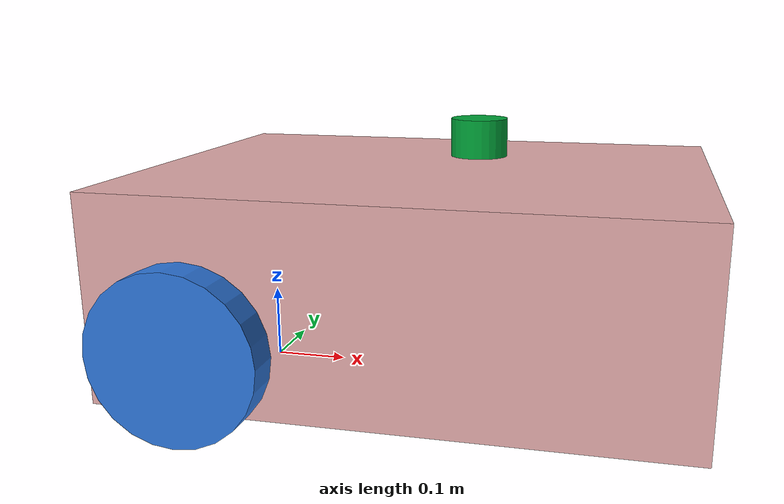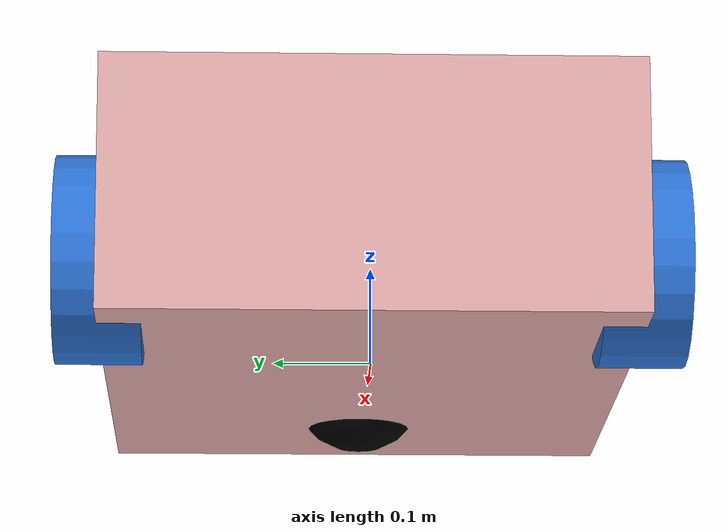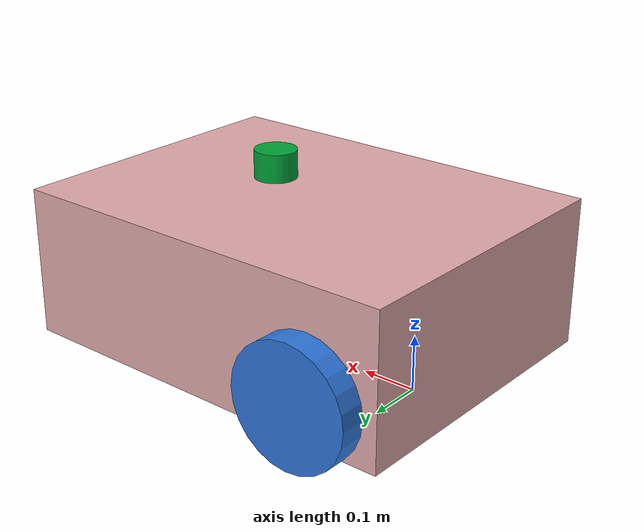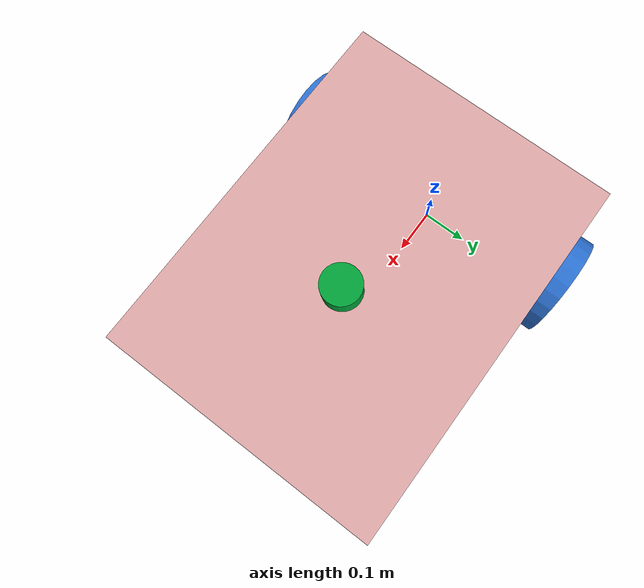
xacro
<?xml version="1.0"?>
<robot name="robomow_612p" xmlns:xacro="http://ros.org/wiki/xacro">
  <xacro:arg name="sim" default="false" />
  <xacro:include filename="$(find linorobot2_description)/urdf/robomow_612p_properties.urdf.xacro" />
  <xacro:include filename="$(find linorobot2_description)/urdf/mech/base.urdf.xacro" />
  <xacro:include filename="$(find linorobot2_description)/urdf/mech/wheel.urdf.xacro" />
  <xacro:include filename="$(find linorobot2_description)/urdf/mech/caster_wheel.urdf.xacro" />
  <xacro:include filename="$(find linorobot2_description)/urdf/sensors/plugins.urdf.xacro" />
  <xacro:include filename="$(find linorobot2_description)/urdf/sensors/imu.urdf.xacro" />
  <xacro:include filename="$(find linorobot2_description)/urdf/sensors/generic_laser.urdf.xacro" />
  <xacro:include filename="$(find linorobot2_description)/urdf/sensors/depth_sensor.urdf.xacro" />
  <xacro:include filename="$(find linorobot2_description)/urdf/controllers/diff_drive.urdf.xacro" />

  <xacro:base
    length="${base_length}"
    width="${base_width}"
    height="${base_height}"
    mass="${base_mass}"
    wheel_radius="${wheel_radius}"
    wheel_pos_z="${wheel_pos_z}"
    mesh_file="${base_mesh_file}"
  />

  <xacro:wheel
    side="left"
    radius="${wheel_radius}"
    width="${wheel_width}"
    pos_x="${wheel_pos_x}"
    pos_y="${wheel_pos_y}"
    pos_z="${wheel_pos_z}"
    mass="${wheel_mass}"
    mesh_file="${wheel_mesh_file}"
  />

  <xacro:wheel
    side="right"
    radius="${wheel_radius}"
    width="${wheel_width}"
    pos_x="${wheel_pos_x}"
    pos_y="${-wheel_pos_y}"
    pos_z="${wheel_pos_z}"
    mass="${wheel_mass}"
    mesh_file="${wheel_mesh_file}"
  />

  <xacro:if value="${front_caster_wheel}">
    <xacro:caster_wheel
      side="front"
      mass="0.1"
      base_length="${caster_pos_x}"
      wheel_radius="${wheel_radius}"
      wheel_pos_z="${wheel_pos_z}"
    />
  </xacro:if>

  <xacro:imu/>

  <xacro:generic_laser>
    <xacro:insert_block name="laser_pose" />
  </xacro:generic_laser>

  <xacro:depth_sensor>
    <xacro:insert_block name="depth_sensor_pose" />
  </xacro:depth_sensor>

  <xacro:diff_drive_controller
    wheel_separation="${wheel_pos_y * 2}"
    wheel_radius="${wheel_radius}"
  />
</robot>

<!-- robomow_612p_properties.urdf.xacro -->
<robot xmlns:xacro="http://ros.org/wiki/xacro">
  <!-- Robomow 612P Dimensions (converted from inches to meters) -->
  <!-- 1 inch = 0.0254 meters -->

  <!-- Horizontal distance between centers of wheels: 22 inch = 0.5588 m -->
  <xacro:property name="base_width" value="0.5588" />

  <!-- Driving wheel diameter: 8.5 inch -> radius: 4.25 inch = 0.10795 m -->
  <xacro:property name="wheel_radius" value="0.10795" />
  <xacro:property name="wheel_width" value="0.090" />

  <!-- Caster wheel position: 19 inch from driving axle = 0.4826 m -->
  <xacro:property name="wheel_pos_x" value="0.0" />
  <xacro:property name="wheel_pos_y" value="0.2794" /> <!-- base_width / 2 -->
  <xacro:property name="wheel_pos_z" value="-0.0508" />

  <!-- Caster wheel diameter: 3.5 inch -> radius: 1.75 inch = 0.04445 m -->
  <xacro:property name="caster_radius" value="0.04445" />
  <xacro:property name="caster_pos_x" value="0.5334" />
  <xacro:property name="caster_pos_y" value="0.0" />
  <xacro:property name="caster_pos_z" value="0.0" />

  <!-- Base dimensions -->
  <xacro:property name="base_length" value="0.737" />
  <xacro:property name="base_height" value="0.2667" />
  <xacro:property name="base_mass" value="20.0" />
  <xacro:property name="base_mesh_file" value="" />

  <xacro:property name="wheel_mass" value="1.0" />
  <xacro:property name="wheel_torque" value="20" />

  <xacro:property name="front_caster_wheel" value="true" />
  <xacro:property name="rear_caster_wheel" value="false" />

  <xacro:property name="wheel_mesh_file" value="" />

  <xacro:property name="laser_pose">
    <origin xyz="0.3 0 0.2" rpy="0 0 0"/>
  </xacro:property>

  <xacro:property name="depth_sensor_pose">
    <origin xyz="0.3 0 0.1" rpy="0 0 0"/>
  </xacro:property>
</robot>

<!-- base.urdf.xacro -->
<robot xmlns:xacro="http://ros.org/wiki/xacro">
  <xacro:macro name="base" params="length width height mass wheel_radius wheel_pos_z mesh_file">
    <link name="base_footprint"/>

    <link name="base_link">
      <visual>
        <origin xyz="${(length/2) - 0.1327} 0 0" rpy="0 0 0"/>
        <geometry>
          <xacro:if value="${mesh_file == ''}">
            <box size="${length} ${width} ${height}"/>
          </xacro:if>
          <xacro:unless value="${mesh_file == ''}">
            <mesh filename="${mesh_file}" scale="1 1 1"/>
          </xacro:unless>
        </geometry>
        <material name="yellow">
          <color rgba="0.8784 0.6627 0.6627 1.0"/>
        </material>
      </visual>

      <collision>
        <origin xyz="${(length/2) - 0.0127} 0 0" rpy="0 0 0"/>
        <geometry>
          <box size="${length} ${width} ${height}"/>
        </geometry>
      </collision>

      <inertial>
        <origin xyz="0 0 0" rpy="0 0 0"/>
        <mass value="${mass}"/>
        <inertia ixx="${(1/12) * mass * ((width  * width)  + (height * height))}" ixy="0.0" ixz="0.0"
                 iyy="${(1/12) * mass * ((length * length) + (height * height))}" iyz="0.0"
                 izz="${(1/12) * mass * ((length * length) + (width  * width))}"/>
      </inertial>
    </link>

    <gazebo reference="base_link">
      <visual>
        <material>
          <ambient>0.8392 0.6314 0.0 1.0</ambient>
          <diffuse>0.8392 0.6314 0.0 1.0</diffuse>
          <specular>0.99 0.99 0.99 1.0</specular>
          <emissive>0.0 0.0 0.0 0.0</emissive>
        </material>
      </visual>
    </gazebo>

    <joint name="base_to_footprint" type="fixed">
      <parent link="base_footprint"/>
      <child link="base_link"/>
      <origin xyz="0 0 ${wheel_radius - wheel_pos_z}" rpy="0 0 0"/>
    </joint>
  </xacro:macro>
</robot>

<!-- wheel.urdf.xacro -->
<robot xmlns:xacro="http://ros.org/wiki/xacro">
  <xacro:macro name="wheel" params="side radius width pos_x pos_y pos_z mass mesh_file">
    <link name="${side}_wheel_link">
      <visual>
        <origin xyz="0 0 0" rpy="${pi/2} 0 0"/>
        <geometry>
          <xacro:if value="${mesh_file == ''}">
            <cylinder radius="${radius}" length="${width}"/>
          </xacro:if>
          <xacro:unless value="${mesh_file == ''}">
            <mesh filename="${mesh_file}" scale="1 1 1"/>
          </xacro:unless>
        </geometry>
        <material name="blue">
            <color rgba="0.1764 0.4588 0.8509 1.0"/>
        </material>
      </visual>
      <collision>
        <origin xyz="0 0 0" rpy="${pi/2} 0 0"/>
        <geometry>
          <cylinder radius="${radius}" length="${width}"/>
        </geometry>
      </collision>

      <inertial>
        <origin xyz="0 0 0" rpy="0 0 0"/>
        <mass value="${mass}"/>
        <inertia ixx="${(2/5) * mass * (radius * radius)}" ixy="0" ixz="0"
                 iyy="${(2/5) * mass * (radius * radius)}" iyz="0"
                 izz="${(2/5) * mass * (radius * radius)}" />
      </inertial>
    </link>
    <gazebo reference="${side}_wheel_link">
      <visual>
        <material>
          <ambient>0.1764 0.4588 0.8509 1.0</ambient>
          <diffuse>0.1764 0.4588 0.8509 1.0</diffuse>
          <specular>0.1764 0.4588 0.8509 1.0</specular>
          <emissive>0.0 0.0 0.0 0.0</emissive>
        </material>
      </visual>
    </gazebo>
    <joint name="${side}_wheel_joint" type="continuous">
      <axis xyz="0 1 0" />
      <parent link="base_link"/>
      <child link="${side}_wheel_link"/>
      <origin xyz="${pos_x} ${pos_y} ${pos_z}" rpy="0 0 0"/>
    </joint>
  </xacro:macro>
</robot>

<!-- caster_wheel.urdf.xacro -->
<robot xmlns:xacro="http://ros.org/wiki/xacro">
  <xacro:macro name="caster_wheel" params="side mass base_length wheel_radius wheel_pos_z">
    <xacro:property name="caster_wheel_radius" value="${(wheel_radius - wheel_pos_z) / 2}" />
    <xacro:if value="${side == 'front'}">
        <xacro:property name="caster_wheel_x" value="${base_length - caster_wheel_radius}" />
    </xacro:if>

    <xacro:if value="${side == 'rear'}">
        <xacro:property name="caster_wheel_x" value="${-base_length + caster_wheel_radius}" />
    </xacro:if>

    <link name="${side}_caster_wheel_link">
      <visual>
        <origin xyz="0 0 0" rpy="0 0 0"/>
        <geometry>
          <sphere radius="${caster_wheel_radius}" />
        </geometry>
        <material name="black">
            <color rgba="0.0 0.0 0.0 1.0"/>
        </material>
      </visual>

      <collision>
        <origin xyz="0 0 0" rpy="0 0 0"/>
        <geometry>
          <sphere radius="${caster_wheel_radius}" />
        </geometry>
      </collision>

      <inertial>
        <origin xyz="0 0 0" rpy="0 0 0"/>
        <mass value="${mass}"/>
        <inertia ixx="${(2/5) * mass * (caster_wheel_radius * caster_wheel_radius)}" ixy="0" ixz="0"
                 iyy="${(2/5) * mass * (caster_wheel_radius * caster_wheel_radius)}" iyz="0"
                 izz="${(2/5) * mass * (caster_wheel_radius * caster_wheel_radius)}" />
      </inertial>
    </link>

    <gazebo reference="${side}_caster_wheel_link">
        <mu1>0.01</mu1>
        <mu2>0.01</mu2>
    </gazebo>

    <joint name="${side}_caster_wheel_joint" type="fixed">
      <parent link="base_link"/>
      <child link="${side}_caster_wheel_link"/>
      <origin xyz="${caster_wheel_x} 0 -${caster_wheel_radius}" rpy="0 0 0"/>
    </joint>
  </xacro:macro>
</robot>

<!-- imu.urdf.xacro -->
<robot xmlns:xacro="http://ros.org/wiki/xacro">
  <xacro:macro name="imu">
    <link name="imu_link"/>

    <joint name="imu_to_base_link" type="fixed">
      <parent link="base_link"/>
      <child link="imu_link"/>
      <origin xyz="0 0 0" rpy="0 0 0"/>
    </joint>

    <gazebo>
      <plugin filename="gz-sim-imu-system" name="gz::sim::systems::Imu">
      </plugin>
    </gazebo>

    <gazebo reference="imu_link">
      <sensor name="imu_sensor" type="imu">
        <topic>$(arg namespace)/imu/data</topic>
        <update_rate>50</update_rate>
        <always_on>true</always_on>
        <visualize>true</visualize>
      </sensor>
    </gazebo>
  </xacro:macro>
</robot>

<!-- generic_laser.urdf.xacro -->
<robot xmlns:xacro="http://ros.org/wiki/xacro">
  <xacro:include filename="$(find linorobot2_description)/urdf/sensors/laser.urdf.xacro" />

  <xacro:macro name="generic_laser" params="*origin">
    <xacro:laser
      update_rate="10"
      ray_count="360"
      min_angle="-3.1416"
      max_angle="3.1416"
      min_range="0.08"
      max_range="12.0"
      frame_id="laser"
      topic_name="/scan"
    >
      <xacro:insert_block name="origin" />
    </xacro:laser>
  </xacro:macro>

  <xacro:macro name="generic_base_laser" params="*origin">
    <xacro:laser
      update_rate="10"
      ray_count="360"
      min_angle="-3.1416"
      max_angle="3.1416"
      min_range="0.21"
      max_range="5.5"
      frame_id="base_laser"
      topic_name="base/scan"
    >
      <xacro:insert_block name="origin" />
    </xacro:laser>
  </xacro:macro>
</robot>

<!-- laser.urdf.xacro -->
<robot xmlns:xacro="http://ros.org/wiki/xacro">
  <xacro:property name="M_PI" value="3.1415926535897931" />
  <xacro:macro name="laser" params="*origin update_rate ray_count min_angle max_angle min_range max_range frame_id topic_name">
    <link name="${frame_id}">
      <visual>
        <origin xyz="0 0 -0.025" rpy="0 0 0"/>
        <geometry>
          <cylinder radius="0.0375" length="0.05"/>
        </geometry>
        <material name="green">
            <color rgba="0.003 0.639 0.223 1.0"/>
        </material>
      </visual>
      <collision>
        <origin xyz="0 0 -0.025" rpy="0 0 0"/>
        <geometry>
          <cylinder radius="0.0375" length="0.05"/>
        </geometry>
      </collision>

      <inertial>
        <origin xyz="0 0 0" rpy="0 0 0"/>
        <mass value="0.1"/>
        <inertia ixx="${(2/5) * 0.1 * (0.0375 * 0.0375)}" ixy="0" ixz="0"
                 iyy="${(2/5) * 0.1 * (0.0375 * 0.0375)}" iyz="0"
                 izz="${(2/5) * 0.1 * (0.0375 * 0.0375)}" />
      </inertial>
    </link>

    <gazebo reference="${frame_id}">
      <visual>
        <material>
          <ambient>0.003 0.639 0.223 1.0</ambient>
          <diffuse>0.003 0.639 0.223 1.0</diffuse>
          <specular>0.003 0.639 0.223 1.0</specular>
          <emissive>0.0 0.0 0.0 0.0</emissive>
        </material>
      </visual>
    </gazebo>

    <joint name="${frame_id}_to_base_link" type="fixed">
      <parent link="base_link"/>
      <child link="${frame_id}"/>
      <xacro:insert_block name="origin" />
    </joint>

    <gazebo reference="${frame_id}">
      <sensor name="gpu_lidar" type="gpu_lidar">
        <topic>$(arg namespace)${topic_name}</topic>
        <gz_frame_id>${frame_id}</gz_frame_id>
        <update_rate>${update_rate}</update_rate>
        <always_on>true</always_on>
        <visualize>true</visualize>
        <lidar>
          <scan>
            <horizontal>
              <samples>${ray_count}</samples>
              <resolution>1</resolution>
              <min_angle>${min_angle}</min_angle>
              <max_angle>${max_angle}</max_angle>
            </horizontal>
            <vertical>
              <samples>1</samples>
              <resolution>1</resolution>
              <min_angle>0.0</min_angle>
              <max_angle>0.0</max_angle>
            </vertical>
          </scan>
          <range>
            <min>${min_range}</min>
            <max>${max_range}</max>
            <resolution>0.01</resolution>
          </range>
        </lidar>
      </sensor>
    </gazebo>
  </xacro:macro>
</robot>

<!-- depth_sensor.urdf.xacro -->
<robot xmlns:xacro="http://ros.org/wiki/xacro">
  <xacro:property name="M_PI" value="3.1415926535897931" />
  <xacro:macro name="depth_sensor" params="*origin">
    <link name="camera_link">
      <visual>
        <origin xyz="0 0 0" rpy="0 0 0"/>
        <geometry>
          <box size="0.030 0.124 0.030"/>
        </geometry>
        <material name="red">
          <color rgba="0.416 0.051 0.047 1.0"/>
        </material>
      </visual>

      <collision>
        <origin xyz="0 0 0" rpy="0 0 0"/>
        <geometry>
          <box size="0.030 0.124 0.030"/>
        </geometry>
      </collision>

      <inertial>
        <origin xyz="0 0 0" rpy="0 0 0"/>
        <mass value="0.135"/>
        <inertia ixx="${(1/12) * 0.135 * ((0.124  * 0.124)  + (0.030 * 0.030))}" ixy="0.0" ixz="0.0"
                 iyy="${(1/12) * 0.135 * ((0.030 * 0.030) + (0.030 * 0.030))}" iyz="0.0"
                 izz="${(1/12) * 0.135 * ((0.030 * 0.030) + (0.124  * 0.124))}"/>
      </inertial>
    </link>

    <gazebo reference="camera_link">
      <visual>
        <material>
          <ambient>0.416 0.051 0.047 1.0</ambient>
          <diffuse>0.416 0.051 0.047 1.0</diffuse>
          <specular>0.416 0.051 0.047 1.0</specular>
          <emissive>0.416 0.051 0.047 1.0</emissive>
        </material>
      </visual>
    </gazebo>rgb(213,28,40)

    <joint name="camera_to_base_link" type="fixed">
      <parent link="base_link"/>
      <child link="camera_link"/>
      <xacro:insert_block name="origin" />
    </joint>

    <link name="camera_depth_link"/>
    <joint name="camera_depth_joint" type="fixed">
      <origin xyz="0 0 0" rpy="0 0 0"/>
      <parent link="camera_link"/>
      <child link="camera_depth_link"/>
    </joint>

    <gazebo reference="camera_link">
      <sensor name="camera" type="rgbd_camera">
        <topic>$(arg namespace)/camera</topic>
        <update_rate>30.0</update_rate>
        <always_on>true</always_on>
        <visualize>true</visualize>
        <camera>
          <optical_frame_id>camera_depth_link</optical_frame_id>
          <horizontal_fov>1.50098</horizontal_fov>
          <image>
            <width>640</width>
            <height>480</height>
            <format>R8G8B8</format>
          </image>
          <clip>
            <near>0.3</near>
            <far>100</far>
          </clip>
        </camera>
      </sensor>
    </gazebo>
  </xacro:macro>
</robot>
